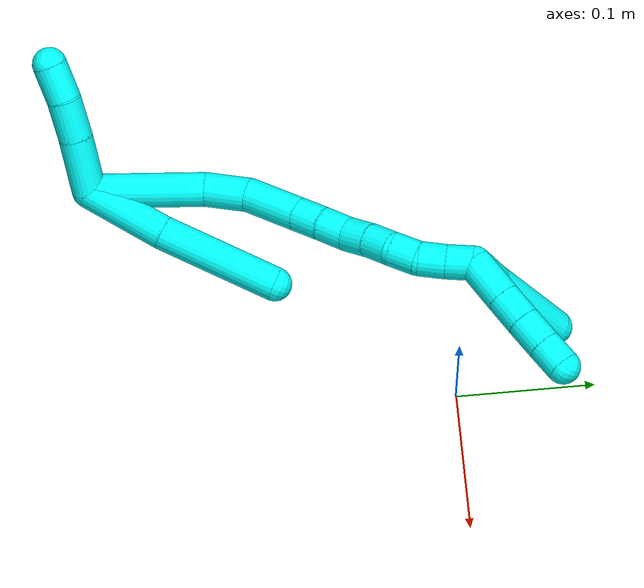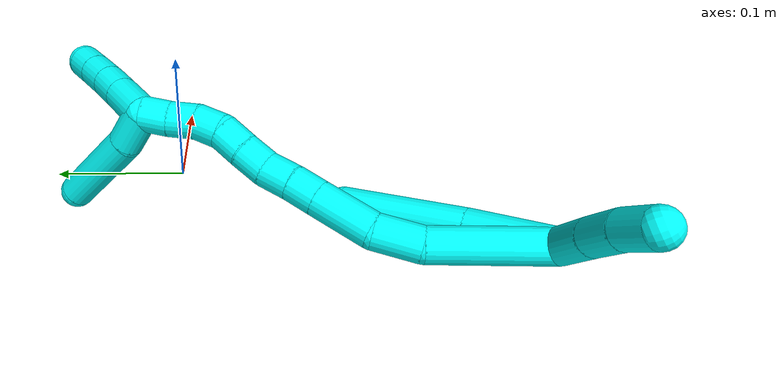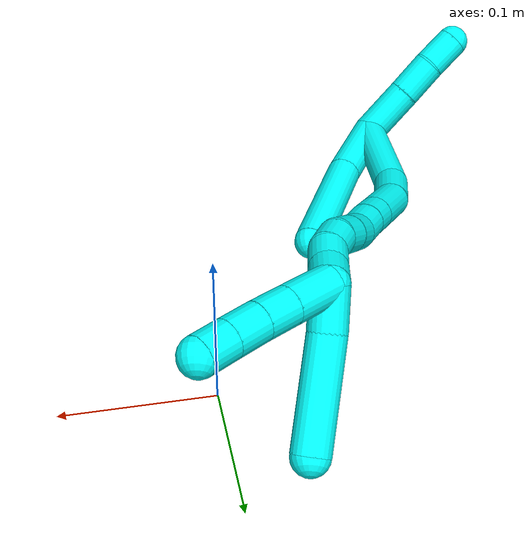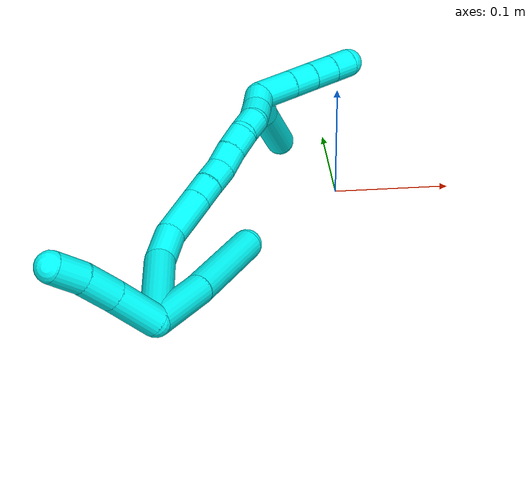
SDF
<sdf version="1.7">
 <world name="default">
  <model name="3">
   <static>0</static>
   <link name="3">
    <collision name="collision-cylinder-e_1_2_8">
     <pose>0.009285 0.012772 -0.026024 -2.68536 0.309957 -1.18468</pose>
     <geometry><cylinder><radius>0.0125</radius><length>0.060879</length></cylinder></geometry>
     <surface>
      <friction><ode><mu>1.16</mu><mu2>1.16</mu2><slip1>0</slip1><slip2>0</slip2></ode></friction>
      <contact><ode><kp>1e+06</kp><kd>1</kd><max_vel>0</max_vel><min_depth>0.001</min_depth></ode></contact>
     </surface>
    </collision>
    <visual name="visual-cylinder-e_1_2_8">
     <pose>0.009285 0.012772 -0.026024 -2.68536 0.309957 -1.18468</pose>
     <geometry><cylinder><radius>0.0125</radius><length>0.060879</length></cylinder></geometry>
     <material><ambient>0.003922 1 0.996078 1</ambient></material>
    </visual>
    <collision name="collision-cylinder-e_2_8_6">
     <pose>0.028528 0.044939 -0.09091 -2.67867 0.225398 -0.895389</pose>
     <geometry><cylinder><radius>0.0125</radius><length>0.089121</length></cylinder></geometry>
     <surface>
      <friction><ode><mu>1.16</mu><mu2>1.16</mu2><slip1>0</slip1><slip2>0</slip2></ode></friction>
      <contact><ode><kp>1e+06</kp><kd>1</kd><max_vel>0</max_vel><min_depth>0.001</min_depth></ode></contact>
     </surface>
    </collision>
    <visual name="visual-cylinder-e_2_8_6">
     <pose>0.028528 0.044939 -0.09091 -2.67867 0.225398 -0.895389</pose>
     <geometry><cylinder><radius>0.0125</radius><length>0.089121</length></cylinder></geometry>
     <material><ambient>0.003922 1 0.996078 1</ambient></material>
    </visual>
    <collision name="collision-cylinder-e_1_2_9">
     <pose>-0.014779 0.007357 0.013241 -0.507164 -0.77308 0.210188</pose>
     <geometry><cylinder><radius>0.0125</radius><length>0.042325</length></cylinder></geometry>
     <surface>
      <friction><ode><mu>1.16</mu><mu2>1.16</mu2><slip1>0</slip1><slip2>0</slip2></ode></friction>
      <contact><ode><kp>1e+06</kp><kd>1</kd><max_vel>0</max_vel><min_depth>0.001</min_depth></ode></contact>
     </surface>
    </collision>
    <visual name="visual-cylinder-e_1_2_9">
     <pose>-0.014779 0.007357 0.013241 -0.507164 -0.77308 0.210188</pose>
     <geometry><cylinder><radius>0.0125</radius><length>0.042325</length></cylinder></geometry>
     <material><ambient>0.003922 1 0.996078 1</ambient></material>
    </visual>
    <collision name="collision-cylinder-e_2_9_10">
     <pose>-0.039932 0.019457 0.036499 -0.442175 -0.752363 0.177094</pose>
     <geometry><cylinder><radius>0.0125</radius><length>0.030364</length></cylinder></geometry>
     <surface>
      <friction><ode><mu>1.16</mu><mu2>1.16</mu2><slip1>0</slip1><slip2>0</slip2></ode></friction>
      <contact><ode><kp>1e+06</kp><kd>1</kd><max_vel>0</max_vel><min_depth>0.001</min_depth></ode></contact>
     </surface>
    </collision>
    <visual name="visual-cylinder-e_2_9_10">
     <pose>-0.039932 0.019457 0.036499 -0.442175 -0.752363 0.177094</pose>
     <geometry><cylinder><radius>0.0125</radius><length>0.030364</length></cylinder></geometry>
     <material><ambient>0.003922 1 0.996078 1</ambient></material>
    </visual>
    <collision name="collision-cylinder-e_3_10_5">
     <pose>-0.059826 0.026548 0.056022 -0.242139 -0.771364 0.098715</pose>
     <geometry><cylinder><radius>0.0125</radius><length>0.027311</length></cylinder></geometry>
     <surface>
      <friction><ode><mu>1.16</mu><mu2>1.16</mu2><slip1>0</slip1><slip2>0</slip2></ode></friction>
      <contact><ode><kp>1e+06</kp><kd>1</kd><max_vel>0</max_vel><min_depth>0.001</min_depth></ode></contact>
     </surface>
    </collision>
    <visual name="visual-cylinder-e_3_10_5">
     <pose>-0.059826 0.026548 0.056022 -0.242139 -0.771364 0.098715</pose>
     <geometry><cylinder><radius>0.0125</radius><length>0.027311</length></cylinder></geometry>
     <material><ambient>0.003922 1 0.996078 1</ambient></material>
    </visual>
    <collision name="collision-cylinder-e_1_2_11">
     <pose>-0.009269 0.020292 -0.035469 -2.62194 -0.223046 0.797412</pose>
     <geometry><cylinder><radius>0.0125</radius><length>0.083801</length></cylinder></geometry>
     <surface>
      <friction><ode><mu>1.16</mu><mu2>1.16</mu2><slip1>0</slip1><slip2>0</slip2></ode></friction>
      <contact><ode><kp>1e+06</kp><kd>1</kd><max_vel>0</max_vel><min_depth>0.001</min_depth></ode></contact>
     </surface>
    </collision>
    <visual name="visual-cylinder-e_1_2_11">
     <pose>-0.009269 0.020292 -0.035469 -2.62194 -0.223046 0.797412</pose>
     <geometry><cylinder><radius>0.0125</radius><length>0.083801</length></cylinder></geometry>
     <material><ambient>0.003922 1 0.996078 1</ambient></material>
    </visual>
    <collision name="collision-cylinder-e_2_11_12">
     <pose>-0.018792 0.051062 -0.083344 -2.44023 -0.015716 0.042957</pose>
     <geometry><cylinder><radius>0.0125</radius><length>0.032485</length></cylinder></geometry>
     <surface>
      <friction><ode><mu>1.16</mu><mu2>1.16</mu2><slip1>0</slip1><slip2>0</slip2></ode></friction>
      <contact><ode><kp>1e+06</kp><kd>1</kd><max_vel>0</max_vel><min_depth>0.001</min_depth></ode></contact>
     </surface>
    </collision>
    <visual name="visual-cylinder-e_2_11_12">
     <pose>-0.018792 0.051062 -0.083344 -2.44023 -0.015716 0.042957</pose>
     <geometry><cylinder><radius>0.0125</radius><length>0.032485</length></cylinder></geometry>
     <material><ambient>0.003922 1 0.996078 1</ambient></material>
    </visual>
    <collision name="collision-cylinder-e_3_12_13">
     <pose>-0.013497 0.076717 -0.109229 -2.29702 0.266949 -0.580779</pose>
     <geometry><cylinder><radius>0.0125</radius><length>0.042082</length></cylinder></geometry>
     <surface>
      <friction><ode><mu>1.16</mu><mu2>1.16</mu2><slip1>0</slip1><slip2>0</slip2></ode></friction>
      <contact><ode><kp>1e+06</kp><kd>1</kd><max_vel>0</max_vel><min_depth>0.001</min_depth></ode></contact>
     </surface>
    </collision>
    <visual name="visual-cylinder-e_3_12_13">
     <pose>-0.013497 0.076717 -0.109229 -2.29702 0.266949 -0.580779</pose>
     <geometry><cylinder><radius>0.0125</radius><length>0.042082</length></cylinder></geometry>
     <material><ambient>0.003922 1 0.996078 1</ambient></material>
    </visual>
    <collision name="collision-cylinder-e_4_13_14">
     <pose>-0.005288 0.099212 -0.129077 -2.28694 0.267366 -0.574317</pose>
     <geometry><cylinder><radius>0.0125</radius><length>0.020125</length></cylinder></geometry>
     <surface>
      <friction><ode><mu>1.16</mu><mu2>1.16</mu2><slip1>0</slip1><slip2>0</slip2></ode></friction>
      <contact><ode><kp>1e+06</kp><kd>1</kd><max_vel>0</max_vel><min_depth>0.001</min_depth></ode></contact>
     </surface>
    </collision>
    <visual name="visual-cylinder-e_4_13_14">
     <pose>-0.005288 0.099212 -0.129077 -2.28694 0.267366 -0.574317</pose>
     <geometry><cylinder><radius>0.0125</radius><length>0.020125</length></cylinder></geometry>
     <material><ambient>0.003922 1 0.996078 1</ambient></material>
    </visual>
    <collision name="collision-cylinder-e_5_14_15">
     <pose>0.000136 0.113701 -0.142689 -2.36129 0.265102 -0.627068</pose>
     <geometry><cylinder><radius>0.0125</radius><length>0.021115</length></cylinder></geometry>
     <surface>
      <friction><ode><mu>1.16</mu><mu2>1.16</mu2><slip1>0</slip1><slip2>0</slip2></ode></friction>
      <contact><ode><kp>1e+06</kp><kd>1</kd><max_vel>0</max_vel><min_depth>0.001</min_depth></ode></contact>
     </surface>
    </collision>
    <visual name="visual-cylinder-e_5_14_15">
     <pose>0.000136 0.113701 -0.142689 -2.36129 0.265102 -0.627068</pose>
     <geometry><cylinder><radius>0.0125</radius><length>0.021115</length></cylinder></geometry>
     <material><ambient>0.003922 1 0.996078 1</ambient></material>
    </visual>
    <collision name="collision-cylinder-e_6_15_16">
     <pose>0.005089 0.12941 -0.154851 -2.09343 0.218339 -0.374809</pose>
     <geometry><cylinder><radius>0.0125</radius><length>0.020194</length></cylinder></geometry>
     <surface>
      <friction><ode><mu>1.16</mu><mu2>1.16</mu2><slip1>0</slip1><slip2>0</slip2></ode></friction>
      <contact><ode><kp>1e+06</kp><kd>1</kd><max_vel>0</max_vel><min_depth>0.001</min_depth></ode></contact>
     </surface>
    </collision>
    <visual name="visual-cylinder-e_6_15_16">
     <pose>0.005089 0.12941 -0.154851 -2.09343 0.218339 -0.374809</pose>
     <geometry><cylinder><radius>0.0125</radius><length>0.020194</length></cylinder></geometry>
     <material><ambient>0.003922 1 0.996078 1</ambient></material>
    </visual>
    <collision name="collision-cylinder-e_7_16_17">
     <pose>0.010241 0.14619 -0.164622 -2.10294 0.300666 -0.518037</pose>
     <geometry><cylinder><radius>0.0125</radius><length>0.020021</length></cylinder></geometry>
     <surface>
      <friction><ode><mu>1.16</mu><mu2>1.16</mu2><slip1>0</slip1><slip2>0</slip2></ode></friction>
      <contact><ode><kp>1e+06</kp><kd>1</kd><max_vel>0</max_vel><min_depth>0.001</min_depth></ode></contact>
     </surface>
    </collision>
    <visual name="visual-cylinder-e_7_16_17">
     <pose>0.010241 0.14619 -0.164622 -2.10294 0.300666 -0.518037</pose>
     <geometry><cylinder><radius>0.0125</radius><length>0.020021</length></cylinder></geometry>
     <material><ambient>0.003922 1 0.996078 1</ambient></material>
    </visual>
    <collision name="collision-cylinder-e_8_17_18">
     <pose>0.015362 0.160856 -0.176924 -2.42988 0.215769 -0.567085</pose>
     <geometry><cylinder><radius>0.0125</radius><length>0.020144</length></cylinder></geometry>
     <surface>
      <friction><ode><mu>1.16</mu><mu2>1.16</mu2><slip1>0</slip1><slip2>0</slip2></ode></friction>
      <contact><ode><kp>1e+06</kp><kd>1</kd><max_vel>0</max_vel><min_depth>0.001</min_depth></ode></contact>
     </surface>
    </collision>
    <visual name="visual-cylinder-e_8_17_18">
     <pose>0.015362 0.160856 -0.176924 -2.42988 0.215769 -0.567085</pose>
     <geometry><cylinder><radius>0.0125</radius><length>0.020144</length></cylinder></geometry>
     <material><ambient>0.003922 1 0.996078 1</ambient></material>
    </visual>
    <collision name="collision-cylinder-e_9_18_19">
     <pose>0.016767 0.172567 -0.192843 -2.58363 -0.075213 0.261195</pose>
     <geometry><cylinder><radius>0.0125</radius><length>0.020022</length></cylinder></geometry>
     <surface>
      <friction><ode><mu>1.16</mu><mu2>1.16</mu2><slip1>0</slip1><slip2>0</slip2></ode></friction>
      <contact><ode><kp>1e+06</kp><kd>1</kd><max_vel>0</max_vel><min_depth>0.001</min_depth></ode></contact>
     </surface>
    </collision>
    <visual name="visual-cylinder-e_9_18_19">
     <pose>0.016767 0.172567 -0.192843 -2.58363 -0.075213 0.261195</pose>
     <geometry><cylinder><radius>0.0125</radius><length>0.020022</length></cylinder></geometry>
     <material><ambient>0.003922 1 0.996078 1</ambient></material>
    </visual>
    <collision name="collision-cylinder-e_10_19_1">
     <pose>0.014981 0.184073 -0.209079 -2.46631 -0.103462 0.292845</pose>
     <geometry><cylinder><radius>0.0125</radius><length>0.020011</length></cylinder></geometry>
     <surface>
      <friction><ode><mu>1.16</mu><mu2>1.16</mu2><slip1>0</slip1><slip2>0</slip2></ode></friction>
      <contact><ode><kp>1e+06</kp><kd>1</kd><max_vel>0</max_vel><min_depth>0.001</min_depth></ode></contact>
     </surface>
    </collision>
    <visual name="visual-cylinder-e_10_19_1">
     <pose>0.014981 0.184073 -0.209079 -2.46631 -0.103462 0.292845</pose>
     <geometry><cylinder><radius>0.0125</radius><length>0.020011</length></cylinder></geometry>
     <material><ambient>0.003922 1 0.996078 1</ambient></material>
    </visual>
    <collision name="collision-cylinder-e_1_1_20">
     <pose>0.015113 0.183669 -0.229723 2.66637 0.080328 0.328859</pose>
     <geometry><cylinder><radius>0.0125</radius><length>0.029055</length></cylinder></geometry>
     <surface>
      <friction><ode><mu>1.16</mu><mu2>1.16</mu2><slip1>0</slip1><slip2>0</slip2></ode></friction>
      <contact><ode><kp>1e+06</kp><kd>1</kd><max_vel>0</max_vel><min_depth>0.001</min_depth></ode></contact>
     </surface>
    </collision>
    <visual name="visual-cylinder-e_1_1_20">
     <pose>0.015113 0.183669 -0.229723 2.66637 0.080328 0.328859</pose>
     <geometry><cylinder><radius>0.0125</radius><length>0.029055</length></cylinder></geometry>
     <material><ambient>0.003922 1 0.996078 1</ambient></material>
    </visual>
    <collision name="collision-cylinder-e_2_20_4">
     <pose>0.021314 0.167735 -0.276456 2.87327 0.142432 0.972421</pose>
     <geometry><cylinder><radius>0.0125</radius><length>0.070945</length></cylinder></geometry>
     <surface>
      <friction><ode><mu>1.16</mu><mu2>1.16</mu2><slip1>0</slip1><slip2>0</slip2></ode></friction>
      <contact><ode><kp>1e+06</kp><kd>1</kd><max_vel>0</max_vel><min_depth>0.001</min_depth></ode></contact>
     </surface>
    </collision>
    <visual name="visual-cylinder-e_2_20_4">
     <pose>0.021314 0.167735 -0.276456 2.87327 0.142432 0.972421</pose>
     <geometry><cylinder><radius>0.0125</radius><length>0.070945</length></cylinder></geometry>
     <material><ambient>0.003922 1 0.996078 1</ambient></material>
    </visual>
    <collision name="collision-cylinder-e_1_1_21">
     <pose>0.025021 0.198179 -0.226705 -2.46698 0.720088 -1.64157</pose>
     <geometry><cylinder><radius>0.0125</radius><length>0.033583</length></cylinder></geometry>
     <surface>
      <friction><ode><mu>1.16</mu><mu2>1.16</mu2><slip1>0</slip1><slip2>0</slip2></ode></friction>
      <contact><ode><kp>1e+06</kp><kd>1</kd><max_vel>0</max_vel><min_depth>0.001</min_depth></ode></contact>
     </surface>
    </collision>
    <visual name="visual-cylinder-e_1_1_21">
     <pose>0.025021 0.198179 -0.226705 -2.46698 0.720088 -1.64157</pose>
     <geometry><cylinder><radius>0.0125</radius><length>0.033583</length></cylinder></geometry>
     <material><ambient>0.003922 1 0.996078 1</ambient></material>
    </visual>
    <collision name="collision-cylinder-e_2_21_22">
     <pose>0.043593 0.211475 -0.243329 -2.46698 0.7134 -1.63141</pose>
     <geometry><cylinder><radius>0.0125</radius><length>0.02292</length></cylinder></geometry>
     <surface>
      <friction><ode><mu>1.16</mu><mu2>1.16</mu2><slip1>0</slip1><slip2>0</slip2></ode></friction>
      <contact><ode><kp>1e+06</kp><kd>1</kd><max_vel>0</max_vel><min_depth>0.001</min_depth></ode></contact>
     </surface>
    </collision>
    <visual name="visual-cylinder-e_2_21_22">
     <pose>0.043593 0.211475 -0.243329 -2.46698 0.7134 -1.63141</pose>
     <geometry><cylinder><radius>0.0125</radius><length>0.02292</length></cylinder></geometry>
     <material><ambient>0.003922 1 0.996078 1</ambient></material>
    </visual>
    <collision name="collision-cylinder-e_3_22_23">
     <pose>0.05841 0.222171 -0.257151 -2.49874 0.69291 -1.65157</pose>
     <geometry><cylinder><radius>0.0125</radius><length>0.022911</length></cylinder></geometry>
     <surface>
      <friction><ode><mu>1.16</mu><mu2>1.16</mu2><slip1>0</slip1><slip2>0</slip2></ode></friction>
      <contact><ode><kp>1e+06</kp><kd>1</kd><max_vel>0</max_vel><min_depth>0.001</min_depth></ode></contact>
     </surface>
    </collision>
    <visual name="visual-cylinder-e_3_22_23">
     <pose>0.05841 0.222171 -0.257151 -2.49874 0.69291 -1.65157</pose>
     <geometry><cylinder><radius>0.0125</radius><length>0.022911</length></cylinder></geometry>
     <material><ambient>0.003922 1 0.996078 1</ambient></material>
    </visual>
    <collision name="collision-cylinder-e_4_23_3">
     <pose>0.072237 0.232185 -0.270624 -2.50655 0.684667 -1.65169</pose>
     <geometry><cylinder><radius>0.0125</radius><length>0.020587</length></cylinder></geometry>
     <surface>
      <friction><ode><mu>1.16</mu><mu2>1.16</mu2><slip1>0</slip1><slip2>0</slip2></ode></friction>
      <contact><ode><kp>1e+06</kp><kd>1</kd><max_vel>0</max_vel><min_depth>0.001</min_depth></ode></contact>
     </surface>
    </collision>
    <visual name="visual-cylinder-e_4_23_3">
     <pose>0.072237 0.232185 -0.270624 -2.50655 0.684667 -1.65169</pose>
     <geometry><cylinder><radius>0.0125</radius><length>0.020587</length></cylinder></geometry>
     <material><ambient>0.003922 1 0.996078 1</ambient></material>
    </visual>
    <collision name="collision-sphere-3">
     <pose>0.078747 0.236915 -0.277044 0 -0 0</pose>
     <geometry><sphere><radius>0.0125</radius></sphere></geometry>
     <surface>
      <friction><ode><mu>1.16</mu><mu2>1.16</mu2><slip1>0</slip1><slip2>0</slip2></ode></friction>
      <contact><ode><kp>1e+06</kp><kd>1</kd><max_vel>0</max_vel><min_depth>0.001</min_depth></ode></contact>
     </surface>
    </collision>
    <visual name="visual-sphere-3">
     <pose>0.078747 0.236915 -0.277044 0 -0 0</pose>
     <geometry><sphere><radius>0.0125</radius></sphere></geometry>
     <material><ambient>0.003922 1 0.996078 1</ambient></material>
    </visual>
    <collision name="collision-sphere-23">
     <pose>0.065728 0.227455 -0.264205 0 -0 0</pose>
     <geometry><sphere><radius>0.0125</radius></sphere></geometry>
     <surface>
      <friction><ode><mu>1.16</mu><mu2>1.16</mu2><slip1>0</slip1><slip2>0</slip2></ode></friction>
      <contact><ode><kp>1e+06</kp><kd>1</kd><max_vel>0</max_vel><min_depth>0.001</min_depth></ode></contact>
     </surface>
    </collision>
    <visual name="visual-sphere-23">
     <pose>0.065728 0.227455 -0.264205 0 -0 0</pose>
     <geometry><sphere><radius>0.0125</radius></sphere></geometry>
     <material><ambient>0.003922 1 0.996078 1</ambient></material>
    </visual>
    <collision name="collision-sphere-22">
     <pose>0.051093 0.216888 -0.250097 0 -0 0</pose>
     <geometry><sphere><radius>0.0125</radius></sphere></geometry>
     <surface>
      <friction><ode><mu>1.16</mu><mu2>1.16</mu2><slip1>0</slip1><slip2>0</slip2></ode></friction>
      <contact><ode><kp>1e+06</kp><kd>1</kd><max_vel>0</max_vel><min_depth>0.001</min_depth></ode></contact>
     </surface>
    </collision>
    <visual name="visual-sphere-22">
     <pose>0.051093 0.216888 -0.250097 0 -0 0</pose>
     <geometry><sphere><radius>0.0125</radius></sphere></geometry>
     <material><ambient>0.003922 1 0.996078 1</ambient></material>
    </visual>
    <collision name="collision-sphere-21">
     <pose>0.036094 0.206063 -0.236562 0 -0 0</pose>
     <geometry><sphere><radius>0.0125</radius></sphere></geometry>
     <surface>
      <friction><ode><mu>1.16</mu><mu2>1.16</mu2><slip1>0</slip1><slip2>0</slip2></ode></friction>
      <contact><ode><kp>1e+06</kp><kd>1</kd><max_vel>0</max_vel><min_depth>0.001</min_depth></ode></contact>
     </surface>
    </collision>
    <visual name="visual-sphere-21">
     <pose>0.036094 0.206063 -0.236562 0 -0 0</pose>
     <geometry><sphere><radius>0.0125</radius></sphere></geometry>
     <material><ambient>0.003922 1 0.996078 1</ambient></material>
    </visual>
    <collision name="collision-sphere-4">
     <pose>0.02635 0.158426 -0.310313 0 -0 0</pose>
     <geometry><sphere><radius>0.0125</radius></sphere></geometry>
     <surface>
      <friction><ode><mu>1.16</mu><mu2>1.16</mu2><slip1>0</slip1><slip2>0</slip2></ode></friction>
      <contact><ode><kp>1e+06</kp><kd>1</kd><max_vel>0</max_vel><min_depth>0.001</min_depth></ode></contact>
     </surface>
    </collision>
    <visual name="visual-sphere-4">
     <pose>0.02635 0.158426 -0.310313 0 -0 0</pose>
     <geometry><sphere><radius>0.0125</radius></sphere></geometry>
     <material><ambient>0.003922 1 0.996078 1</ambient></material>
    </visual>
    <collision name="collision-sphere-20">
     <pose>0.016279 0.177044 -0.242599 0 -0 0</pose>
     <geometry><sphere><radius>0.0125</radius></sphere></geometry>
     <surface>
      <friction><ode><mu>1.16</mu><mu2>1.16</mu2><slip1>0</slip1><slip2>0</slip2></ode></friction>
      <contact><ode><kp>1e+06</kp><kd>1</kd><max_vel>0</max_vel><min_depth>0.001</min_depth></ode></contact>
     </surface>
    </collision>
    <visual name="visual-sphere-20">
     <pose>0.016279 0.177044 -0.242599 0 -0 0</pose>
     <geometry><sphere><radius>0.0125</radius></sphere></geometry>
     <material><ambient>0.003922 1 0.996078 1</ambient></material>
    </visual>
    <collision name="collision-sphere-5">
     <pose>-0.069346 0.028895 0.065527 0 -0 0</pose>
     <geometry><sphere><radius>0.0125</radius></sphere></geometry>
     <surface>
      <friction><ode><mu>1.16</mu><mu2>1.16</mu2><slip1>0</slip1><slip2>0</slip2></ode></friction>
      <contact><ode><kp>1e+06</kp><kd>1</kd><max_vel>0</max_vel><min_depth>0.001</min_depth></ode></contact>
     </surface>
    </collision>
    <visual name="visual-sphere-5">
     <pose>-0.069346 0.028895 0.065527 0 -0 0</pose>
     <geometry><sphere><radius>0.0125</radius></sphere></geometry>
     <material><ambient>0.003922 1 0.996078 1</ambient></material>
    </visual>
    <collision name="collision-sphere-10">
     <pose>-0.050307 0.0242 0.046517 0 -0 0</pose>
     <geometry><sphere><radius>0.0125</radius></sphere></geometry>
     <surface>
      <friction><ode><mu>1.16</mu><mu2>1.16</mu2><slip1>0</slip1><slip2>0</slip2></ode></friction>
      <contact><ode><kp>1e+06</kp><kd>1</kd><max_vel>0</max_vel><min_depth>0.001</min_depth></ode></contact>
     </surface>
    </collision>
    <visual name="visual-sphere-10">
     <pose>-0.050307 0.0242 0.046517 0 -0 0</pose>
     <geometry><sphere><radius>0.0125</radius></sphere></geometry>
     <material><ambient>0.003922 1 0.996078 1</ambient></material>
    </visual>
    <collision name="collision-sphere-6">
     <pose>0.038487 0.064335 -0.129772 0 -0 0</pose>
     <geometry><sphere><radius>0.0125</radius></sphere></geometry>
     <surface>
      <friction><ode><mu>1.16</mu><mu2>1.16</mu2><slip1>0</slip1><slip2>0</slip2></ode></friction>
      <contact><ode><kp>1e+06</kp><kd>1</kd><max_vel>0</max_vel><min_depth>0.001</min_depth></ode></contact>
     </surface>
    </collision>
    <visual name="visual-sphere-6">
     <pose>0.038487 0.064335 -0.129772 0 -0 0</pose>
     <geometry><sphere><radius>0.0125</radius></sphere></geometry>
     <material><ambient>0.003922 1 0.996078 1</ambient></material>
    </visual>
    <collision name="collision-sphere-9">
     <pose>-0.029557 0.014714 0.026481 0 -0 0</pose>
     <geometry><sphere><radius>0.0125</radius></sphere></geometry>
     <surface>
      <friction><ode><mu>1.16</mu><mu2>1.16</mu2><slip1>0</slip1><slip2>0</slip2></ode></friction>
      <contact><ode><kp>1e+06</kp><kd>1</kd><max_vel>0</max_vel><min_depth>0.001</min_depth></ode></contact>
     </surface>
    </collision>
    <visual name="visual-sphere-9">
     <pose>-0.029557 0.014714 0.026481 0 -0 0</pose>
     <geometry><sphere><radius>0.0125</radius></sphere></geometry>
     <material><ambient>0.003922 1 0.996078 1</ambient></material>
    </visual>
    <collision name="collision-sphere-2">
     <geometry><sphere><radius>0.0125</radius></sphere></geometry>
     <surface>
      <friction><ode><mu>1.16</mu><mu2>1.16</mu2><slip1>0</slip1><slip2>0</slip2></ode></friction>
      <contact><ode><kp>1e+06</kp><kd>1</kd><max_vel>0</max_vel><min_depth>0.001</min_depth></ode></contact>
     </surface>
    </collision>
    <visual name="visual-sphere-2">
     <geometry><sphere><radius>0.0125</radius></sphere></geometry>
     <material><ambient>0.003922 1 0.996078 1</ambient></material>
    </visual>
    <collision name="collision-sphere-19">
     <pose>0.016014 0.177852 -0.201311 0 -0 0</pose>
     <geometry><sphere><radius>0.0125</radius></sphere></geometry>
     <surface>
      <friction><ode><mu>1.16</mu><mu2>1.16</mu2><slip1>0</slip1><slip2>0</slip2></ode></friction>
      <contact><ode><kp>1e+06</kp><kd>1</kd><max_vel>0</max_vel><min_depth>0.001</min_depth></ode></contact>
     </surface>
    </collision>
    <visual name="visual-sphere-19">
     <pose>0.016014 0.177852 -0.201311 0 -0 0</pose>
     <geometry><sphere><radius>0.0125</radius></sphere></geometry>
     <material><ambient>0.003922 1 0.996078 1</ambient></material>
    </visual>
    <collision name="collision-sphere-8">
     <pose>0.018569 0.025543 -0.052047 0 -0 0</pose>
     <geometry><sphere><radius>0.0125</radius></sphere></geometry>
     <surface>
      <friction><ode><mu>1.16</mu><mu2>1.16</mu2><slip1>0</slip1><slip2>0</slip2></ode></friction>
      <contact><ode><kp>1e+06</kp><kd>1</kd><max_vel>0</max_vel><min_depth>0.001</min_depth></ode></contact>
     </surface>
    </collision>
    <visual name="visual-sphere-8">
     <pose>0.018569 0.025543 -0.052047 0 -0 0</pose>
     <geometry><sphere><radius>0.0125</radius></sphere></geometry>
     <material><ambient>0.003922 1 0.996078 1</ambient></material>
    </visual>
    <collision name="collision-sphere-11">
     <pose>-0.018537 0.040583 -0.070937 0 -0 0</pose>
     <geometry><sphere><radius>0.0125</radius></sphere></geometry>
     <surface>
      <friction><ode><mu>1.16</mu><mu2>1.16</mu2><slip1>0</slip1><slip2>0</slip2></ode></friction>
      <contact><ode><kp>1e+06</kp><kd>1</kd><max_vel>0</max_vel><min_depth>0.001</min_depth></ode></contact>
     </surface>
    </collision>
    <visual name="visual-sphere-11">
     <pose>-0.018537 0.040583 -0.070937 0 -0 0</pose>
     <geometry><sphere><radius>0.0125</radius></sphere></geometry>
     <material><ambient>0.003922 1 0.996078 1</ambient></material>
    </visual>
    <collision name="collision-sphere-12">
     <pose>-0.019048 0.061542 -0.095751 0 -0 0</pose>
     <geometry><sphere><radius>0.0125</radius></sphere></geometry>
     <surface>
      <friction><ode><mu>1.16</mu><mu2>1.16</mu2><slip1>0</slip1><slip2>0</slip2></ode></friction>
      <contact><ode><kp>1e+06</kp><kd>1</kd><max_vel>0</max_vel><min_depth>0.001</min_depth></ode></contact>
     </surface>
    </collision>
    <visual name="visual-sphere-12">
     <pose>-0.019048 0.061542 -0.095751 0 -0 0</pose>
     <geometry><sphere><radius>0.0125</radius></sphere></geometry>
     <material><ambient>0.003922 1 0.996078 1</ambient></material>
    </visual>
    <collision name="collision-sphere-13">
     <pose>-0.007947 0.091892 -0.122706 0 -0 0</pose>
     <geometry><sphere><radius>0.0125</radius></sphere></geometry>
     <surface>
      <friction><ode><mu>1.16</mu><mu2>1.16</mu2><slip1>0</slip1><slip2>0</slip2></ode></friction>
      <contact><ode><kp>1e+06</kp><kd>1</kd><max_vel>0</max_vel><min_depth>0.001</min_depth></ode></contact>
     </surface>
    </collision>
    <visual name="visual-sphere-13">
     <pose>-0.007947 0.091892 -0.122706 0 -0 0</pose>
     <geometry><sphere><radius>0.0125</radius></sphere></geometry>
     <material><ambient>0.003922 1 0.996078 1</ambient></material>
    </visual>
    <collision name="collision-sphere-14">
     <pose>-0.00263 0.106533 -0.135448 0 -0 0</pose>
     <geometry><sphere><radius>0.0125</radius></sphere></geometry>
     <surface>
      <friction><ode><mu>1.16</mu><mu2>1.16</mu2><slip1>0</slip1><slip2>0</slip2></ode></friction>
      <contact><ode><kp>1e+06</kp><kd>1</kd><max_vel>0</max_vel><min_depth>0.001</min_depth></ode></contact>
     </surface>
    </collision>
    <visual name="visual-sphere-14">
     <pose>-0.00263 0.106533 -0.135448 0 -0 0</pose>
     <geometry><sphere><radius>0.0125</radius></sphere></geometry>
     <material><ambient>0.003922 1 0.996078 1</ambient></material>
    </visual>
    <collision name="collision-sphere-15">
     <pose>0.002902 0.120868 -0.14993 0 -0 0</pose>
     <geometry><sphere><radius>0.0125</radius></sphere></geometry>
     <surface>
      <friction><ode><mu>1.16</mu><mu2>1.16</mu2><slip1>0</slip1><slip2>0</slip2></ode></friction>
      <contact><ode><kp>1e+06</kp><kd>1</kd><max_vel>0</max_vel><min_depth>0.001</min_depth></ode></contact>
     </surface>
    </collision>
    <visual name="visual-sphere-15">
     <pose>0.002902 0.120868 -0.14993 0 -0 0</pose>
     <geometry><sphere><radius>0.0125</radius></sphere></geometry>
     <material><ambient>0.003922 1 0.996078 1</ambient></material>
    </visual>
    <collision name="collision-sphere-16">
     <pose>0.007277 0.137951 -0.159771 0 -0 0</pose>
     <geometry><sphere><radius>0.0125</radius></sphere></geometry>
     <surface>
      <friction><ode><mu>1.16</mu><mu2>1.16</mu2><slip1>0</slip1><slip2>0</slip2></ode></friction>
      <contact><ode><kp>1e+06</kp><kd>1</kd><max_vel>0</max_vel><min_depth>0.001</min_depth></ode></contact>
     </surface>
    </collision>
    <visual name="visual-sphere-16">
     <pose>0.007277 0.137951 -0.159771 0 -0 0</pose>
     <geometry><sphere><radius>0.0125</radius></sphere></geometry>
     <material><ambient>0.003922 1 0.996078 1</ambient></material>
    </visual>
    <collision name="collision-sphere-17">
     <pose>0.013206 0.15443 -0.169474 0 -0 0</pose>
     <geometry><sphere><radius>0.0125</radius></sphere></geometry>
     <surface>
      <friction><ode><mu>1.16</mu><mu2>1.16</mu2><slip1>0</slip1><slip2>0</slip2></ode></friction>
      <contact><ode><kp>1e+06</kp><kd>1</kd><max_vel>0</max_vel><min_depth>0.001</min_depth></ode></contact>
     </surface>
    </collision>
    <visual name="visual-sphere-17">
     <pose>0.013206 0.15443 -0.169474 0 -0 0</pose>
     <geometry><sphere><radius>0.0125</radius></sphere></geometry>
     <material><ambient>0.003922 1 0.996078 1</ambient></material>
    </visual>
    <collision name="collision-sphere-18">
     <pose>0.017519 0.167282 -0.184374 0 -0 0</pose>
     <geometry><sphere><radius>0.0125</radius></sphere></geometry>
     <surface>
      <friction><ode><mu>1.16</mu><mu2>1.16</mu2><slip1>0</slip1><slip2>0</slip2></ode></friction>
      <contact><ode><kp>1e+06</kp><kd>1</kd><max_vel>0</max_vel><min_depth>0.001</min_depth></ode></contact>
     </surface>
    </collision>
    <visual name="visual-sphere-18">
     <pose>0.017519 0.167282 -0.184374 0 -0 0</pose>
     <geometry><sphere><radius>0.0125</radius></sphere></geometry>
     <material><ambient>0.003922 1 0.996078 1</ambient></material>
    </visual>
    <collision name="collision-sphere-1">
     <pose>0.013948 0.190295 -0.216847 0 -0 0</pose>
     <geometry><sphere><radius>0.0125</radius></sphere></geometry>
     <surface>
      <friction><ode><mu>1.16</mu><mu2>1.16</mu2><slip1>0</slip1><slip2>0</slip2></ode></friction>
      <contact><ode><kp>1e+06</kp><kd>1</kd><max_vel>0</max_vel><min_depth>0.001</min_depth></ode></contact>
     </surface>
    </collision>
    <visual name="visual-sphere-1">
     <pose>0.013948 0.190295 -0.216847 0 -0 0</pose>
     <geometry><sphere><radius>0.0125</radius></sphere></geometry>
     <material><ambient>0.003922 1 0.996078 1</ambient></material>
    </visual>
    <inertial>
     <pose>0.007261 0.095897 -0.121796 0 -0 0</pose>
     <mass>0.75</mass>
     <inertia>
      <ixx>0.000122</ixx>
      <ixy>0</ixy>
      <ixz>0</ixz>
      <iyy>-6.7e-05</iyy>
      <iyz>0</iyz>
      <izz>-0.000124</izz>
     </inertia>
    </inertial>
   </link>
   <pose>-0.164758 -0.250105 0.043693 1.01235 0.085343 -0.29131</pose>
  </model>
 </world>
</sdf>
